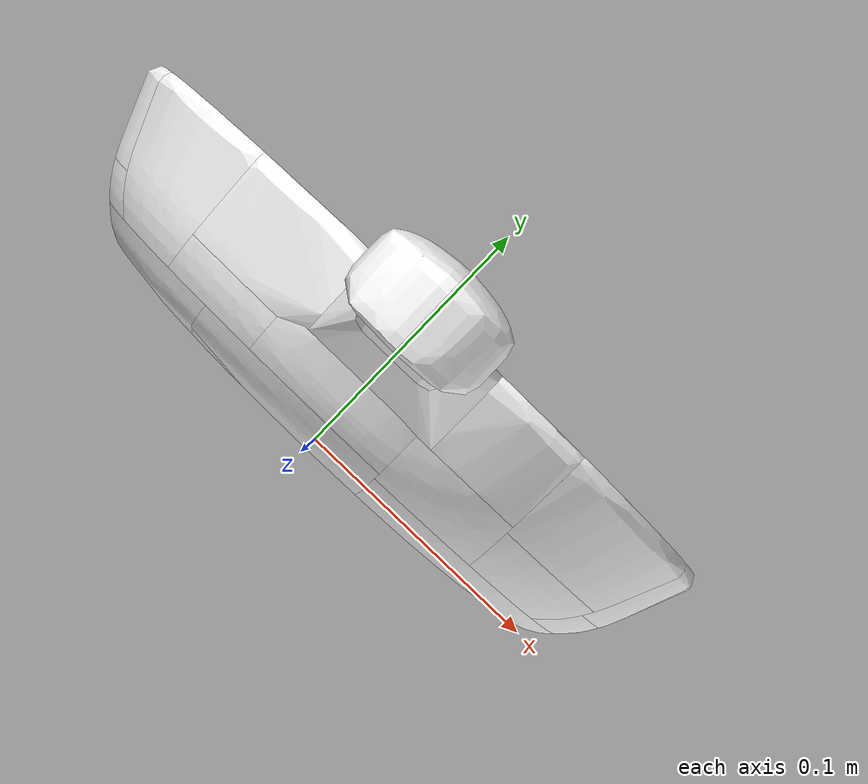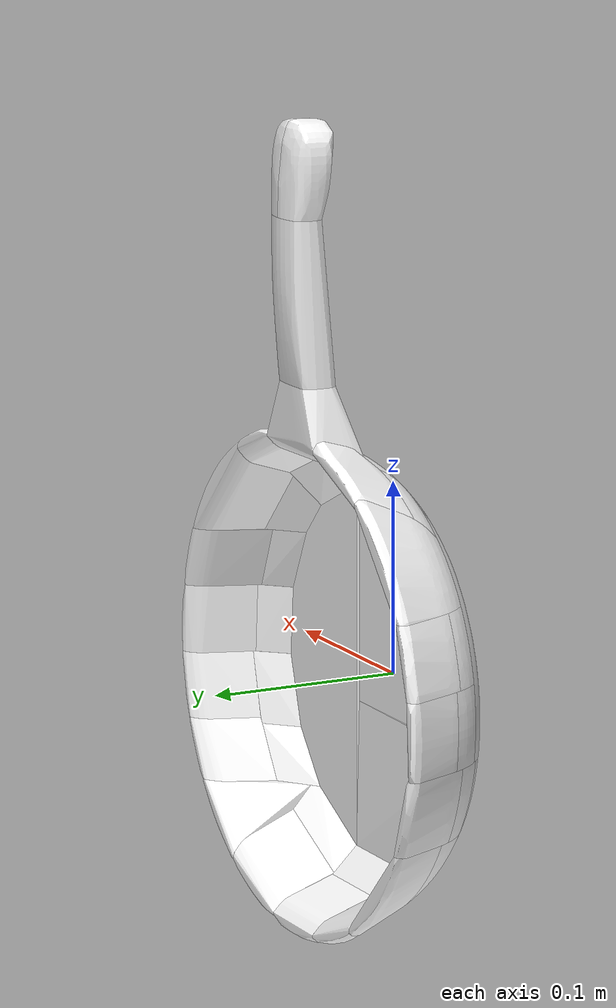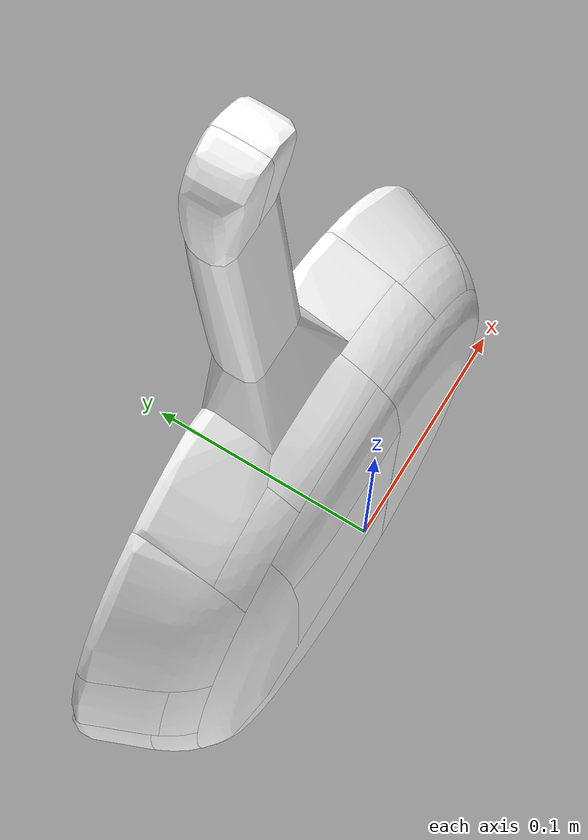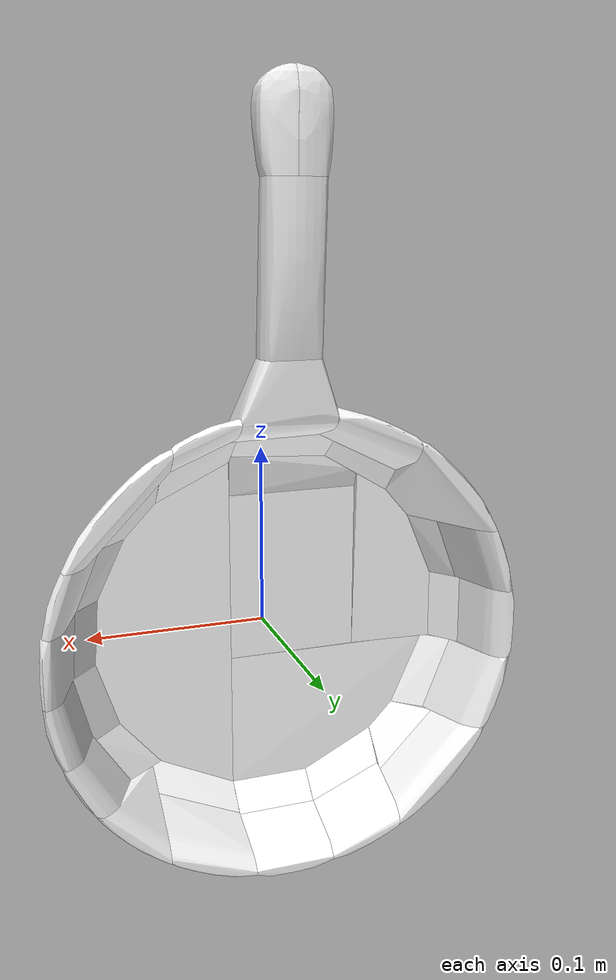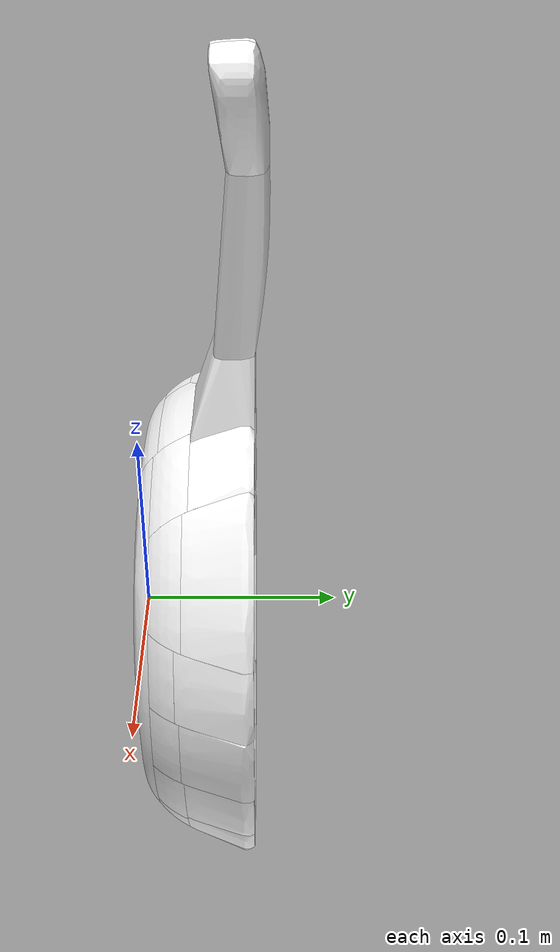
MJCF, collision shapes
<mujoco model="frying_pan">
    <compiler angle="radian"/>

    <default>
        <default class="visual">
            <geom type="mesh" group="2" contype="0" conaffinity="0"/>
        </default>
    <default class="collision">
      <geom type="mesh" group="3" contype="1" conaffinity="1" rgba="1 1 1 0" friction="0.8 0.02 0.001"/>
    </default>
    </default>

    <asset>
        <texture  name="pan_tex" type="2d" file="Pan_01_PAN_BaseColor.png"/>
        <material name="pan_mat" texture="pan_tex"/>
        <mesh name="pan_visual" file="pan.obj"/>

        <mesh name="pan_collision_0"  file="pan_collision_0.obj"/>
        <mesh name="pan_collision_1"  file="pan_collision_1.obj"/>
        <mesh name="pan_collision_2"  file="pan_collision_2.obj"/>
        <mesh name="pan_collision_3"  file="pan_collision_3.obj"/>
        <mesh name="pan_collision_4"  file="pan_collision_4.obj"/>
        <mesh name="pan_collision_5"  file="pan_collision_5.obj"/>
        <mesh name="pan_collision_6"  file="pan_collision_6.obj"/>
        <mesh name="pan_collision_7"  file="pan_collision_7.obj"/>
        <mesh name="pan_collision_8"  file="pan_collision_8.obj"/>
        <mesh name="pan_collision_9"  file="pan_collision_9.obj"/>
        <mesh name="pan_collision_10" file="pan_collision_10.obj"/>
        <mesh name="pan_collision_11" file="pan_collision_11.obj"/>
        <mesh name="pan_collision_12" file="pan_collision_12.obj"/>
        <mesh name="pan_collision_13" file="pan_collision_13.obj"/>
        <mesh name="pan_collision_14" file="pan_collision_14.obj"/>
        <mesh name="pan_collision_15" file="pan_collision_15.obj"/>
        <mesh name="pan_collision_16" file="pan_collision_16.obj"/>
        <mesh name="pan_collision_17" file="pan_collision_17.obj"/>
        <mesh name="pan_collision_18" file="pan_collision_18.obj"/>
        <mesh name="pan_collision_19" file="pan_collision_19.obj"/>
        <mesh name="pan_collision_20" file="pan_collision_20.obj"/>
        <mesh name="pan_collision_21" file="pan_collision_21.obj"/>
        <mesh name="pan_collision_22" file="pan_collision_22.obj"/>
        <mesh name="pan_collision_23" file="pan_collision_23.obj"/>
        <mesh name="pan_collision_24" file="pan_collision_24.obj"/>
        <mesh name="pan_collision_25" file="pan_collision_25.obj"/>
        <mesh name="pan_collision_26" file="pan_collision_26.obj"/>
        <mesh name="pan_collision_27" file="pan_collision_27.obj"/>
        <mesh name="pan_collision_28" file="pan_collision_28.obj"/>
        <mesh name="pan_collision_29" file="pan_collision_29.obj"/>
        <mesh name="pan_collision_30" file="pan_collision_30.obj"/>
        <mesh name="pan_collision_31" file="pan_collision_31.obj"/>
        <mesh name="pan_collision_32" file="pan_collision_32.obj"/>
        <mesh name="pan_collision_33" file="pan_collision_33.obj"/>
        <mesh name="pan_collision_34" file="pan_collision_34.obj"/>
        <mesh name="pan_collision_35" file="pan_collision_35.obj"/>
        <mesh name="pan_collision_36" file="pan_collision_36.obj"/>
        <mesh name="pan_collision_37" file="pan_collision_37.obj"/>
        <mesh name="pan_collision_38" file="pan_collision_38.obj"/>
        <mesh name="pan_collision_39" file="pan_collision_39.obj"/>
    </asset>

    <worldbody>
        <body name="frying_pan" >
            <inertial pos="0 0 0" mass="1.8" diaginertia="0.02 0.02 0.04"/>
            <freejoint/>

            <geom class="visual"   mesh="pan_visual"   material="pan_mat"/>

            <geom class="collision" mesh="pan_collision_0"/>
            <geom class="collision" mesh="pan_collision_1"/>
            <geom class="collision" mesh="pan_collision_2"/>
            <geom class="collision" mesh="pan_collision_3"/>
            <geom class="collision" mesh="pan_collision_4"/>
            <geom class="collision" mesh="pan_collision_5"/>
            <geom class="collision" mesh="pan_collision_6"/>
            <geom class="collision" mesh="pan_collision_7"/>
            <geom class="collision" mesh="pan_collision_8"/>
            <geom class="collision" mesh="pan_collision_9"/>
            <geom class="collision" mesh="pan_collision_10"/>
            <geom class="collision" mesh="pan_collision_11"/>
            <geom class="collision" mesh="pan_collision_12"/>
            <geom class="collision" mesh="pan_collision_13"/>
            <geom class="collision" mesh="pan_collision_14"/>
            <geom class="collision" mesh="pan_collision_15"/>
            <geom class="collision" mesh="pan_collision_16"/>
            <geom class="collision" mesh="pan_collision_17"/>
            <geom class="collision" mesh="pan_collision_18"/>
            <geom class="collision" mesh="pan_collision_19"/>
            <geom class="collision" mesh="pan_collision_20"/>
            <geom class="collision" mesh="pan_collision_21"/>
            <geom class="collision" mesh="pan_collision_22"/>
            <geom class="collision" mesh="pan_collision_23"/>
            <geom class="collision" mesh="pan_collision_24"/>
            <geom class="collision" mesh="pan_collision_25"/>
            <geom class="collision" mesh="pan_collision_26"/>
            <geom class="collision" mesh="pan_collision_27"/>
            <geom class="collision" mesh="pan_collision_28"/>
            <geom class="collision" mesh="pan_collision_29"/>
            <geom class="collision" mesh="pan_collision_30"/>
            <geom class="collision" mesh="pan_collision_31"/>
            <geom class="collision" mesh="pan_collision_32"/>
            <geom class="collision" mesh="pan_collision_33"/>
            <geom class="collision" mesh="pan_collision_34"/>
            <geom class="collision" mesh="pan_collision_35"/>
            <geom class="collision" mesh="pan_collision_36"/>
            <geom class="collision" mesh="pan_collision_37"/>
            <geom class="collision" mesh="pan_collision_38"/>
            <geom class="collision" mesh="pan_collision_39"/>
        </body>
    </worldbody>
</mujoco>
